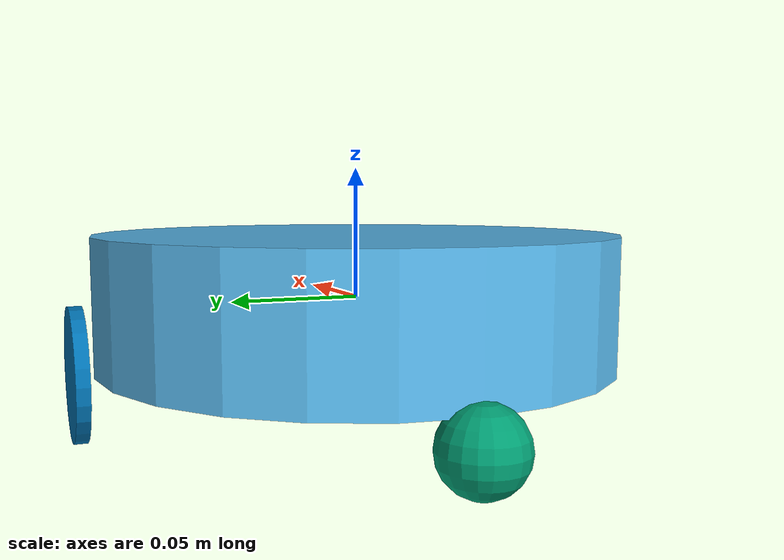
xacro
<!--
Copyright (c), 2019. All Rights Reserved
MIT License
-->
<?xml version="1.0"?>
<robot name="mobile_robot_basic" xmlns:xacro="http://ros.org/wiki/xacro">

    <!-- Chassis Constants -->
    <xacro:property name="chassis_height"   value="0.05"     />
    <xacro:property name="chassis_diameter" value="0.2"      />
    <xacro:property name="chassis_center"   value="0 0 ${chassis_height / 2.0}" />
    <xacro:property name="chassis_mass"     value="1.0"      />

    <!-- Drive Wheels Constants -->
    <xacro:property name="wheel_base"      value="${chassis_diameter}"/>
    <xacro:property name="wheel_diameter"  value="0.05"  />
    <xacro:property name="wheel_thickness" value="0.005" />
    <xacro:property name="wheel_mass"      value="0.001" />
    <xacro:property name="wheel_axel_x"    value="0.01" />

    <!-- Castor Wheel Constants -->
    <xacro:property name="castor_wheel_diameter" value="0.03" />
    <xacro:property name="castor_wheel_center"   value="-${chassis_diameter/2.0} 0 ${castor_wheel_diameter/2.0}" />
    <xacro:property name="castor_wheel_mass"     value="0.001" />

    <!-- Define a macro to compute the default inertial value for a link -->
    <xacro:macro name="default_inertial" params="mass">
        <inertial>
            <mass value="${mass}" />
            <inertia ixx="1.0" ixy="0.0" ixz="0.0" iyy="1.0" iyz="0.0" izz="1.0" />
        </inertial>
    </xacro:macro>

    <!-- load the physics constants and other elements needed for the Gazebo Simulator -->
    <xacro:include filename="$(find mobile_robot_gazebo)/urdf/mobile_robot_basic.gazebo" />

    <!-- _______________________________________________________________________________________________________________
         LINKS & JOINTS
    -->

    <link name="dummy_base_link"/>

    <!-- Robot Chassis Link -->
    <link name="chassis">
        <visual>
            <geometry>
                <cylinder radius="${chassis_diameter/2.0}" length="${chassis_height}"/>
                <origin xyz="${chassis_center}" />
            </geometry>
        </visual>
        <collision>
            <geometry>
                <cylinder radius="${chassis_diameter/2.0}" length="${chassis_height}"/>
                <origin xyz="${chassis_center}" />
            </geometry>
        </collision>

        <xacro:default_inertial mass="${chassis_mass}"/>
    </link>
    <joint name="dummy_base_joint" type="fixed">
        <parent link="dummy_base_link"/>
        <child  link="chassis"/>
    </joint>

    <!-- Castor Wheel Link and Joint -->
    <link name="castor_wheel">
        <visual>
            <origin xyz="${castor_wheel_center}" />
            <geometry>
                <sphere radius="${castor_wheel_diameter/2.0}" />
            </geometry>
        </visual>

        <collision>
            <origin xyz="${castor_wheel_center}" />
            <geometry>
                <sphere radius="${castor_wheel_diameter/2.0}" />
            </geometry>
        </collision>

        <xacro:default_inertial mass="${castor_wheel_mass}"/>

    </link>
    <joint name="castor_joint" type="fixed">
        <parent link="chassis"      />
        <child  link="castor_wheel" />
        <origin xyz="0 0 -${chassis_height}" rpy="0 0 0"/>
    </joint>

    <!--
        Drive Wheel Links, Joints and Transmission

        These are defined as an XACRO macro to make them duplicates
        mirror using the 'reflect' param: 1 is one side -1 the other
    -->
    <xacro:macro name="wheel" params="prefix reflect">

        <link name="${prefix}_wheel">
            <visual>
                <origin xyz="0 0 0" rpy="${pi/2} 0 0" />
                <geometry>
                    <cylinder radius="${wheel_diameter/2.0}" length="${wheel_thickness}"/>
                </geometry>
            </visual>

            <collision>
                <origin xyz="0 0 0" rpy="${pi/2} 0 0" />
                <geometry>
                    <cylinder radius="${wheel_diameter/2}" length="${wheel_thickness}"/>
                </geometry>
            </collision>

            <xacro:default_inertial mass="${wheel_mass}"/>
        </link>

        <joint name="${prefix}_wheel_joint" type="continuous" >
            <axis xyz="0 1 0" rpy="0 0 0" />
            <parent link="chassis" />
            <child link="${prefix}_wheel"/>
            <origin xyz="${wheel_axel_x} ${0.005*reflect + wheel_base*reflect/2.0} -${wheel_diameter/2.0}" rpy="0 0 0"/>
        </joint>

        <transmission name="${prefix}_motor_transmission">
            <type>transmission_interface/SimpleTransmission</type>
                <joint name="${prefix}_wheel_joint">
                    <hardwareInterface>hardware_interface/EffortJointInterface</hardwareInterface>
                </joint>
                <actuator name="${prefix}_motor">
                    <hardwareInterface>hardware_interface/EffortJointInterface</hardwareInterface>
                    <mechanicalReduction>1</mechanicalReduction>
                </actuator>
        </transmission>

    </xacro:macro>

    <!--
        Run the wheel macros to create the left and right wheels
    -->
    <xacro:wheel prefix="left"  reflect="-1" />
    <xacro:wheel prefix="right" reflect="1"  />

</robot>
